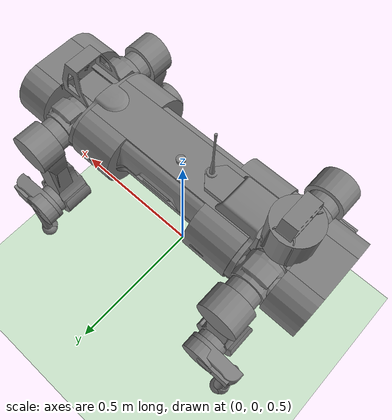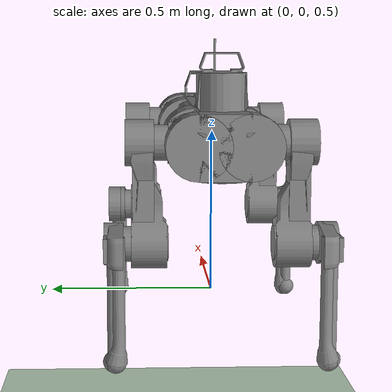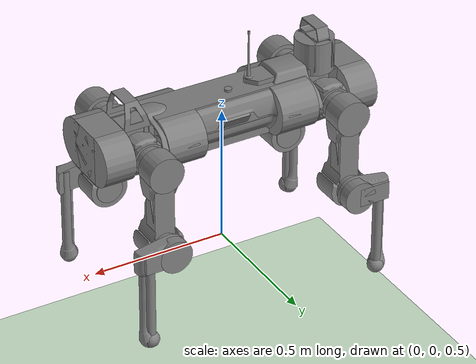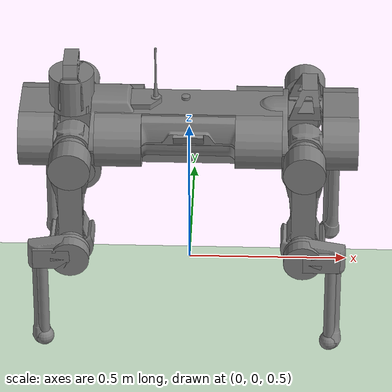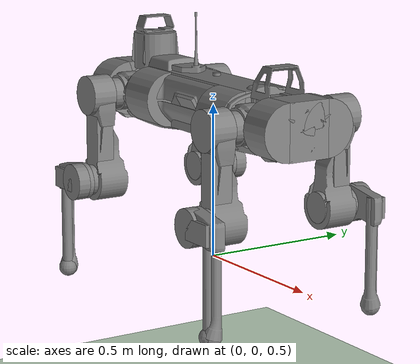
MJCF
<mujoco model="anymal">
    <compiler angle="radian" inertiafromgeom="true" meshdir="../assets/meshes/"/>
    <default>
        <joint armature="1" damping="1" limited="true"/>
        <motor ctrllimited="true" ctrlrange="-.4 .4"/>
    </default>
    <option integrator="RK4" iterations="50" solver="PGS" timestep="0.003">
    </option>
    <size nkey="5" nuser_geom="1"/>
    <visual>
        <map fogend="5" fogstart="3"/>
    </visual>

    <asset>
        <mesh name="base" file="base.stl" />
        <mesh name="top_shell" file="top_shell.stl" />
        <mesh name="bottom_shell" file="bottom_shell.stl" />
        <mesh name="remote" file="remote.stl" />
        <mesh name="handle" file="handle.stl" />
        <mesh name="face" file="face.stl" />
        <mesh name="depth_camera" file="depth_camera.stl" />
        <mesh name="wide_angle_camera" file="wide_angle_camera.stl" />
        <mesh name="battery" file="battery.stl" />
        <mesh name="lidar_cage" file="lidar_cage.stl" />
        <mesh name="lidar" file="lidar.stl" />
        <mesh name="drive" file="drive.stl" />
        <mesh name="hip_l" file="hip_l.stl" />
        <mesh name="thigh" file="thigh.stl" />
        <mesh name="shank_l" file="shank_l.stl" />
        <mesh name="foot" file="foot.stl" />
        <mesh name="hip_r" file="hip_r.stl" />
        <mesh name="shank_r" file="shank_r.stl" />
        <mesh name="hatch" file="hatch.stl" />
        <texture builtin="checker" height="100" name="texplane" rgb1="0 0 0" rgb2="0.8 0.8 0.8" type="2d" width="100"/>
        <material name="MatPlane" reflectance="0.5" shininess="1" specular="1" texrepeat="60 60" texture="texplane"/>
    </asset>
    <worldbody>
        <light cutoff="100" diffuse="1 1 1" dir="-0 0 -1.3" directional="true" exponent="1" pos="0 0 1.3" specular=".1 .1 .1"/>
        <geom conaffinity="1" condim="3" material="MatPlane" name="floor" pos="0 0 0" rgba="0.8 0.9 0.8 1" size="40 40 40" type="plane"/>
        <body name="base" pos="0 0 1.0">
            <joint armature="0" damping="0" limited="false" name="root" pos="0 0 0" stiffness="0" type="free"/>
            <geom type="mesh" contype="0" conaffinity="0" group="1" mesh="base" />
            <geom size="0.29 0.07 0.09" type="box" />
            <geom size="0.09 0.0725" pos="0.2175 0.07 0" quat="0.707107 0 0.707107 0" type="cylinder" />
            <geom size="0.09 0.0725" pos="-0.2175 0.07 0" quat="0.707107 0 0.707107 0" type="cylinder" />
            <geom size="0.09 0.0725" pos="0.2175 -0.07 0" quat="0.707107 0 0.707107 0" type="cylinder" />
            <geom size="0.09 0.0725" pos="-0.2175 -0.07 0" quat="0.707107 0 0.707107 0" type="cylinder" />
            <geom type="mesh" contype="0" conaffinity="0" group="1" mesh="top_shell" />
            <geom type="mesh" contype="0" conaffinity="0" group="1" mesh="bottom_shell" />
            <geom type="mesh" contype="0" conaffinity="0" group="1" mesh="remote" />
            <geom type="mesh" contype="0" conaffinity="0" group="1" mesh="handle" />
            <geom pos="0.4145 0 0" type="mesh" contype="0" conaffinity="0" group="1" mesh="face" />
            <geom size="0.055 0.07 0.09" pos="0.4695 0 0" type="box" />
            <geom size="0.09 0.055" pos="0.4695 0.07 0" quat="0.707107 0 0.707107 0" type="cylinder" />
            <geom size="0.09 0.055" pos="0.4695 -0.07 0" quat="0.707107 0 0.707107 0" type="cylinder" />
            <geom pos="0.46165 0 -0.0292" quat="0.965926 0 0.258819 0" type="mesh" contype="0" conaffinity="0" group="1" mesh="depth_camera" />
            <geom pos="0.513 0 0.01497" type="mesh" contype="0" conaffinity="0" group="1" mesh="wide_angle_camera" />
            <geom pos="-0.4145 0 0" quat="0 0 0 1" type="mesh" contype="0" conaffinity="0" group="1" mesh="face" />
            <geom size="0.055 0.07 0.09" pos="-0.4695 0 0" quat="0 0 0 1" type="box" />
            <geom size="0.09 0.055" pos="-0.4695 -0.07 0" quat="0 -0.707107 0 0.707107" type="cylinder" />
            <geom size="0.09 0.055" pos="-0.4695 0.07 0" quat="0 -0.707107 0 0.707107" type="cylinder" />
            <geom pos="-0.46165 0 -0.0292" quat="0 -0.258819 0 0.965926" type="mesh" contype="0" conaffinity="0" group="1" mesh="depth_camera" />
            <geom pos="-0.513 0 0.01497" quat="0 0 0 1" type="mesh" contype="0" conaffinity="0" group="1" mesh="wide_angle_camera" />
            <geom type="mesh" contype="0" conaffinity="0" group="1" mesh="battery" />
            <geom size="0.012 0.012 0.005" pos="0.2488 0.00835 0.05128" quat="0.707107 0 0 0.707107" type="box" contype="0" conaffinity="0" group="1" />
            <geom size="0.012 0.012 0.005" pos="0.2488 0.00835 0.05128" quat="0.707107 0 0 0.707107" type="box" />
            <geom pos="0 0.07646 0.02905" quat="0.683013 -0.183013 0.183013 0.683013" type="mesh" contype="0" conaffinity="0" group="1" mesh="depth_camera" />
            <geom pos="0 -0.07646 0.02905" quat="0.683013 0.183013 0.183013 -0.683013" type="mesh" contype="0" conaffinity="0" group="1" mesh="depth_camera" />
            <geom pos="-0.364 0 0.0735" type="mesh" contype="0" conaffinity="0" group="1" mesh="lidar_cage" />
            <geom size="0.07 0.06" pos="-0.364 0 0.1335" type="cylinder" />
            <geom pos="-0.364 0 0.1422" quat="0.707107 0 0 -0.707107" type="mesh" contype="0" conaffinity="0" group="1" mesh="lidar" />
            <geom pos="0.2999 0.104 0" quat="0.258819 0.965926 0 0" type="mesh" contype="0" conaffinity="0" group="1" mesh="drive" />
            <geom pos="0.2999 -0.104 0" quat="0.258819 -0.965926 0 0" type="mesh" contype="0" conaffinity="0" group="1" mesh="drive" />
            <geom pos="-0.2999 0.104 0" quat="0 0 0.965926 -0.258819" type="mesh" contype="0" conaffinity="0" group="1" mesh="drive" />
            <geom pos="-0.2999 -0.104 0" quat="0 0 -0.965926 -0.258819" type="mesh" contype="0" conaffinity="0" group="1" mesh="drive" />
            <geom pos="0.116 0 0.073" type="mesh" contype="0" conaffinity="0" group="1" mesh="hatch" />

            <body name="LF_HIP" pos="0.2999 0.104 0" quat="0.258819 0.965926 0 0">
                <inertial pos="0.0566606 -0.015294 -0.00829784" quat="-0.127978 0.709783 -0.135278 0.679359" mass="2.781" diaginertia="0.00585729 0.00491868 0.00329081" />
                <joint name="LF_HAA" pos="0 0 0" axis="1 0 0" limited="true" range="-0.72 0.49" />
                <geom quat="0.258819 -0.965926 0 0" type="mesh" contype="0" conaffinity="0" group="1" mesh="hip_l" />
                <geom pos="0.0599 -0.0725816 -0.041905" quat="0.183013 -0.683013 0.683013 0.183013" type="mesh" contype="0" conaffinity="0" group="1" mesh="drive" />
                <geom size="0.05 0.07" pos="0.0599 -0.0119598 -0.006905" quat="-0.353553 -0.612372 0.612372 -0.353553" type="cylinder" />
                <body name="LF_THIGH" pos="0.0599 -0.0725816 -0.041905" quat="0.183013 -0.683013 0.683013 0.183013">
                    <inertial pos="0.0308147 4.64995e-05 -0.245696" quat="0.993166 -0.00515309 -0.0806592 0.0841972" mass="3.071" diaginertia="0.03025 0.0298943 0.00418465" />
                    <joint name="LF_HFE" pos="0 0 0" axis="1 0 0" limited="true" range="-9.42478 9.42478" />
                    <geom quat="0.707107 0 0 -0.707107" type="mesh" contype="0" conaffinity="0" group="1" mesh="thigh" />
                    <geom size="0.065 0.04" pos="0.04 0 0" quat="0.5 0.5 -0.5 -0.5" type="cylinder" />
                    <geom size="0.0375 0.03 0.141314" pos="0.03 0 -0.141314" quat="0.707107 0 0 -0.707107" type="box" />
                    <geom pos="0.1003 0 -0.285" type="mesh" contype="0" conaffinity="0" group="1" mesh="drive" />
                    <geom size="0.05 0.07" pos="0.0303 0 -0.285" quat="0.707107 0 0.707107 0" type="cylinder" />
                    <body name="LF_SHANK" pos="0.1003 0 -0.285">
                        <inertial pos="0.005462 -0.0612528 -0.0806598" quat="0.992934 -0.115904 -0.00105487 -0.0254421" mass="0.58842" diaginertia="0.0101637 0.00923838 0.00111927" />
                        <joint name="LF_KFE" pos="0 0 0" axis="1 0 0" limited="true" range="-9.42478 9.42478" />
                        <geom quat="0.707107 0 0 -0.707107" type="mesh" contype="0" conaffinity="0" group="1" mesh="shank_l" />
                        <geom size="0.06 0.02" pos="0.02 0 0" quat="0.5 0.5 -0.5 -0.5" type="cylinder" />
                        <geom size="0.057499 0.03375 0.02" pos="0.02 -0.057499 0" quat="0.5 0.5 -0.5 -0.5" type="box" />
                        <geom pos="0.01305 -0.08795 -0.33797" quat="0.382683 0 0 -0.92388" type="mesh" contype="0" conaffinity="0" group="1" mesh="foot" />
                        <geom size="0.0175 0.141252" pos="0.01305 -0.08795 -0.168985" quat="0.707107 0 0 -0.707107" type="cylinder" />
                        <geom size="0.03" pos="0.01305 -0.08795 -0.31547" quat="0.707107 0 0 -0.707107" />
                    </body>
                </body>
            </body>
            <body name="RF_HIP" pos="0.2999 -0.104 0" quat="0.258819 -0.965926 0 0">
                <inertial pos="0.0567633 0.015294 -0.00829784" quat="0.13524 0.679072 0.127985 0.710065" mass="2.781" diaginertia="0.00585928 0.0049205 0.00329064" />
                <joint name="RF_HAA" pos="0 0 0" axis="1 0 0" limited="true" range="-0.49 0.72" />
                <geom quat="0.258819 0.965926 0 0" type="mesh" contype="0" conaffinity="0" group="1" mesh="hip_r" />
                <geom pos="0.0599 0.0725816 -0.041905" quat="0.183013 0.683013 0.683013 -0.183013" type="mesh" contype="0" conaffinity="0" group="1" mesh="drive" />
                <geom size="0.05 0.07" pos="0.0599 0.0119598 -0.006905" quat="-0.353553 0.612372 0.612372 0.353553" type="cylinder" />
                <body name="RF_THIGH" pos="0.0599 0.0725816 -0.041905" quat="0.183013 0.683013 0.683013 -0.183013">
                    <inertial pos="0.0308147 4.64995e-05 -0.245696" quat="0.992775 -0.00512735 -0.0806685 0.0886811" mass="3.071" diaginertia="0.0302511 0.0298933 0.0041845" />
                    <joint name="RF_HFE" pos="0 0 0" axis="-1 0 0" limited="true" range="-9.42478 9.42478" />
                    <geom quat="0.707107 0 0 -0.707107" type="mesh" contype="0" conaffinity="0" group="1" mesh="thigh" />
                    <geom size="0.065 0.04" pos="0.04 0 0" quat="0.5 0.5 0.5 0.5" type="cylinder" />
                    <geom size="0.0375 0.03 0.141314" pos="0.03 0 -0.141314" quat="0.707107 0 0 0.707107" type="box" />
                    <geom pos="0.1003 0 -0.285" type="mesh" contype="0" conaffinity="0" group="1" mesh="drive" />
                    <geom size="0.05 0.07" pos="0.0303 0 -0.285" quat="0.707107 0 0.707107 0" type="cylinder" />
                    <body name="RF_SHANK" pos="0.1003 0 -0.285">
                        <inertial pos="0.005462 0.0612528 -0.0806598" quat="0.992934 0.115904 -0.00105487 0.0254421" mass="0.58842" diaginertia="0.0101637 0.00923838 0.00111927" />
                        <joint name="RF_KFE" pos="0 0 0" axis="-1 0 0" limited="true" range="-9.42478 9.42478" />
                        <geom quat="0.707107 0 0 0.707107" type="mesh" contype="0" conaffinity="0" group="1" mesh="shank_r" />
                        <geom size="0.06 0.02" pos="0.02 0 0" quat="0.5 0.5 0.5 0.5" type="cylinder" />
                        <geom size="0.057499 0.03375 0.02" pos="0.02 0.057499 0" quat="0.5 0.5 0.5 0.5" type="box" />
                        <geom pos="0.01305 0.08795 -0.33797" quat="0.382683 0 0 0.92388" type="mesh" contype="0" conaffinity="0" group="1" mesh="foot" />
                        <geom size="0.0175 0.141252" pos="0.01305 0.08795 -0.168985" quat="0.707107 0 0 0.707107" type="cylinder" />
                        <geom size="0.03" pos="0.01305 0.08795 -0.31547" quat="0.707107 0 0 0.707107" />
                    </body>
                </body>
            </body>
            <body name="LH_HIP" pos="-0.2999 0.104 0" quat="0 0 0.965926 -0.258819">
                <inertial pos="0.0567633 0.015294 -0.00829784" quat="0.13524 0.679072 0.127985 0.710065" mass="2.781" diaginertia="0.00585928 0.0049205 0.00329064" />
                <joint name="LH_HAA" pos="0 0 0" axis="-1 0 0" limited="true" range="-0.72 0.49" />
                <geom quat="-0.258819 -0.965926 0 0" type="mesh" contype="0" conaffinity="0" group="1" mesh="hip_r" />
                <geom pos="0.0599 0.0725816 -0.041905" quat="0.183013 0.683013 0.683013 -0.183013" type="mesh" contype="0" conaffinity="0" group="1" mesh="drive" />
                <geom size="0.05 0.07" pos="0.0599 0.0119598 -0.006905" quat="-0.353553 0.612372 0.612372 0.353553" type="cylinder" />
                <body name="LH_THIGH" pos="0.0599 0.0725816 -0.041905" quat="0.183013 0.683013 0.683013 -0.183013">
                    <inertial pos="0.0308147 4.64995e-05 -0.245696" quat="0.992775 -0.00512735 -0.0806685 0.0886811" mass="3.071" diaginertia="0.0302511 0.0298933 0.0041845" />
                    <joint name="LH_HFE" pos="0 0 0" axis="1 0 0" limited="true" range="-9.42478 9.42478" />
                    <geom quat="0.707107 0 0 -0.707107" type="mesh" contype="0" conaffinity="0" group="1" mesh="thigh" />
                    <geom size="0.065 0.04" pos="0.04 0 0" quat="0.5 0.5 -0.5 -0.5" type="cylinder" />
                    <geom size="0.0375 0.03 0.141314" pos="0.03 0 -0.141314" quat="0.707107 0 0 -0.707107" type="box" />
                    <geom pos="0.1003 0 -0.285" type="mesh" contype="0" conaffinity="0" group="1" mesh="drive" />
                    <geom size="0.05 0.07" pos="0.0303 0 -0.285" quat="0.707107 0 0.707107 0" type="cylinder" />
                    <body name="LH_SHANK" pos="0.1003 0 -0.285">
                        <inertial pos="0.005462 0.0612528 -0.0806598" quat="0.992934 0.115904 -0.00105487 0.0254421" mass="0.58842" diaginertia="0.0101637 0.00923838 0.00111927" />
                        <joint name="LH_KFE" pos="0 0 0" axis="1 0 0" limited="true" range="-9.42478 9.42478" />
                        <geom quat="-0.707107 0 0 -0.707107" type="mesh" contype="0" conaffinity="0" group="1" mesh="shank_r" />
                        <geom size="0.06 0.02" pos="0.02 0 0" quat="0.5 0.5 -0.5 -0.5" type="cylinder" />
                        <geom size="0.057499 0.03375 0.02" pos="0.02 0.057499 0" quat="0.5 0.5 -0.5 -0.5" type="box" />
                        <geom pos="0.01305 0.08795 -0.33797" quat="-0.382683 0 0 -0.92388" type="mesh" contype="0" conaffinity="0" group="1" mesh="foot" />
                        <geom size="0.0175 0.141252" pos="0.01305 0.08795 -0.168985" quat="0.707107 0 0 -0.707107" type="cylinder" />
                        <geom size="0.03" pos="0.01305 0.08795 -0.31547" quat="0.707107 0 0 -0.707107" />
                    </body>
                </body>
            </body>
            <body name="RH_HIP" pos="-0.2999 -0.104 0" quat="0 0 -0.965926 -0.258819">
                <inertial pos="0.0566606 -0.015294 -0.00829784" quat="-0.127978 0.709783 -0.135278 0.679359" mass="2.781" diaginertia="0.00585729 0.00491868 0.00329081" />
                <joint name="RH_HAA" pos="0 0 0" axis="-1 0 0" limited="true" range="-0.49 0.72" />
                <geom quat="-0.258819 0.965926 0 0" type="mesh" contype="0" conaffinity="0" group="1" mesh="hip_l" />
                <geom pos="0.0599 -0.0725816 -0.041905" quat="-0.183013 0.683013 -0.683013 -0.183013" type="mesh" contype="0" conaffinity="0" group="1" mesh="drive" />
                <geom size="0.05 0.07" pos="0.0599 -0.0119598 -0.006905" quat="0.353553 0.612372 -0.612372 0.353553" type="cylinder" />
                <body name="RH_THIGH" pos="0.0599 -0.0725816 -0.041905" quat="-0.183013 0.683013 -0.683013 -0.183013">
                    <inertial pos="0.0308147 4.64995e-05 -0.245696" quat="0.993166 -0.00515309 -0.0806592 0.0841972" mass="3.071" diaginertia="0.03025 0.0298943 0.00418465" />
                    <joint name="RH_HFE" pos="0 0 0" axis="-1 0 0" limited="true" range="-9.42478 9.42478" />
                    <geom quat="0.707107 0 0 -0.707107" type="mesh" contype="0" conaffinity="0" group="1" mesh="thigh" />
                    <geom size="0.065 0.04" pos="0.04 0 0" quat="0.5 0.5 0.5 0.5" type="cylinder" />
                    <geom size="0.0375 0.03 0.141314" pos="0.03 0 -0.141314" quat="0.707107 0 0 0.707107" type="box" />
                    <geom pos="0.1003 0 -0.285" type="mesh" contype="0" conaffinity="0" group="1" mesh="drive" />
                    <geom size="0.05 0.07" pos="0.0303 0 -0.285" quat="0.707107 0 0.707107 0" type="cylinder" />
                    <body name="RH_SHANK" pos="0.1003 0 -0.285">
                        <inertial pos="0.005462 -0.0612528 -0.0806598" quat="0.992934 -0.115904 -0.00105487 -0.0254421" mass="0.58842" diaginertia="0.0101637 0.00923838 0.00111927" />
                        <joint name="RH_KFE" pos="0 0 0" axis="-1 0 0" limited="true" range="-9.42478 9.42478" />
                        <geom quat="0.707107 0 0 -0.707107" type="mesh" contype="0" conaffinity="0" group="1" mesh="shank_l" />
                        <geom size="0.06 0.02" pos="0.02 0 0" quat="0.5 0.5 0.5 0.5" type="cylinder" />
                        <geom size="0.057499 0.03375 0.02" pos="0.02 -0.057499 0" quat="0.5 0.5 0.5 0.5" type="box" />
                        <geom pos="0.01305 -0.08795 -0.33797" quat="0.382683 0 0 -0.92388" type="mesh" contype="0" conaffinity="0" group="1" mesh="foot" />
                        <geom size="0.0175 0.141252" pos="0.01305 -0.08795 -0.168985" quat="0.707107 0 0 0.707107" type="cylinder" />
                        <geom size="0.03" pos="0.01305 -0.08795 -0.31547" quat="0.707107 0 0 0.707107" />
                    </body>
                </body>
            </body>
        </body>
    </worldbody>
</mujoco>
